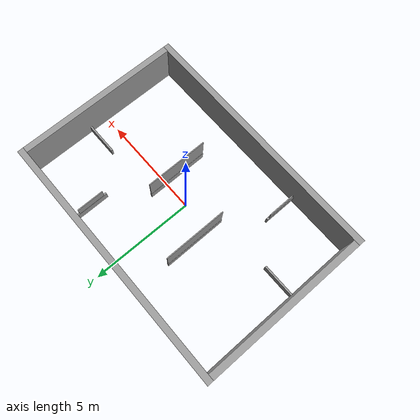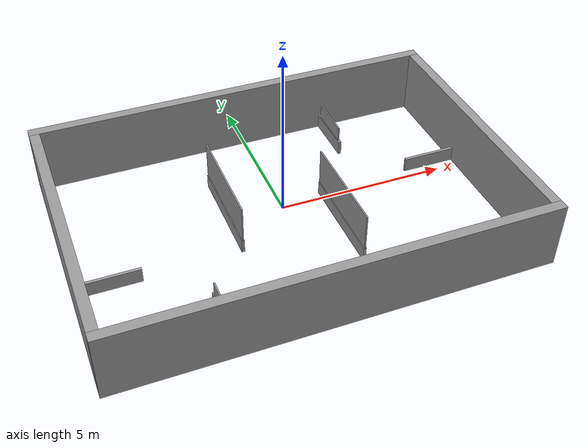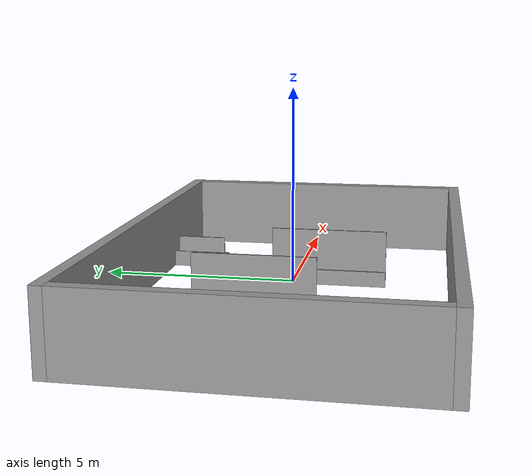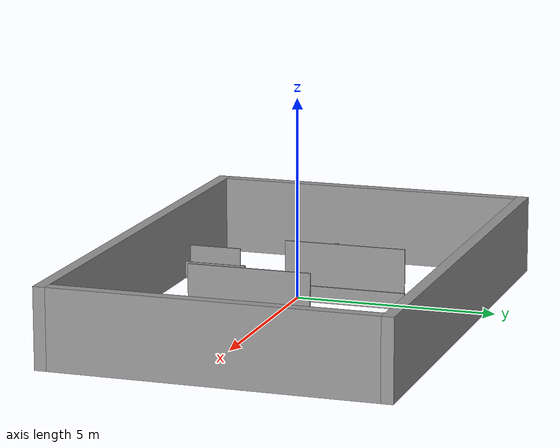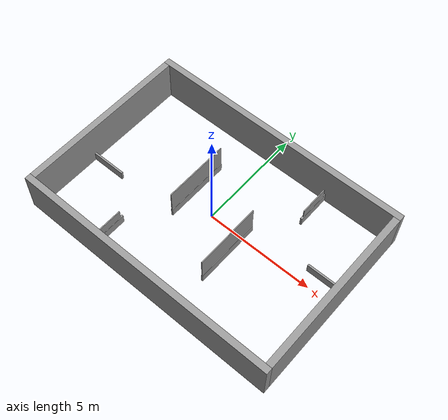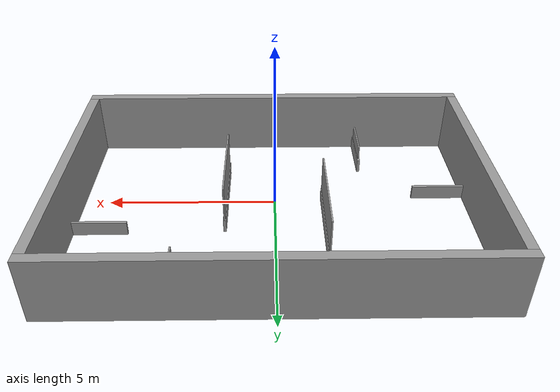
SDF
<?xml version='1.0'?>
<sdf version='1.7'>
  <model name='RM_Field_1'>
    <link name='link_2'>
      <inertial>
        <mass>1</mass>
        <inertia>
          <ixx>0.166667</ixx>
          <ixy>0</ixy>
          <ixz>0</ixz>
          <iyy>0.166667</iyy>
          <iyz>0</iyz>
          <izz>0.166667</izz>
        </inertia>
        <pose>0 0 0 0 -0 0</pose>
      </inertial>
      <pose>-0 -4.15 0.5 0 -0 0</pose>
      <gravity>1</gravity>
      <self_collide>0</self_collide>
      <kinematic>0</kinematic>
      <enable_wind>0</enable_wind>
      <visual name='visual'>
        <pose>0 0 0 0 -0 0</pose>
        <geometry>
          <box>
            <size>12.6 0.3 2</size>
          </box>
        </geometry>
        <material>
          <lighting>1</lighting>
          <script>
            <uri>file://media/materials/scripts/gazebo.material</uri>
            <name>Gazebo/Grey</name>
          </script>
          <shader type='pixel'>
            <normal_map>__default__</normal_map>
          </shader>
          <ambient>0.3 0.3 0.3 1</ambient>
          <diffuse>0.7 0.7 0.7 1</diffuse>
          <specular>0.01 0.01 0.01 1</specular>
          <emissive>0 0 0 1</emissive>
        </material>
        <transparency>0</transparency>
        <cast_shadows>1</cast_shadows>
      </visual>
      <collision name='collision'>
        <laser_retro>0</laser_retro>
        <max_contacts>10</max_contacts>
        <pose>0 0 0 0 -0 0</pose>
        <geometry>
          <box>
            <size>12.6 0.3 2</size>
          </box>
        </geometry>
        <surface>
          <friction>
            <ode>
              <mu>1</mu>
              <mu2>1</mu2>
              <fdir1>0 0 0</fdir1>
              <slip1>0</slip1>
              <slip2>0</slip2>
            </ode>
            <torsional>
              <coefficient>1</coefficient>
              <patch_radius>0</patch_radius>
              <surface_radius>0</surface_radius>
              <use_patch_radius>1</use_patch_radius>
              <ode>
                <slip>0</slip>
              </ode>
            </torsional>
          </friction>
          <bounce>
            <restitution_coefficient>0</restitution_coefficient>
            <threshold>1e+06</threshold>
          </bounce>
          <contact>
            <collide_without_contact>0</collide_without_contact>
            <collide_without_contact_bitmask>1</collide_without_contact_bitmask>
            <collide_bitmask>1</collide_bitmask>
            <ode>
              <soft_cfm>0</soft_cfm>
              <soft_erp>0.2</soft_erp>
              <kp>1e+13</kp>
              <kd>1</kd>
              <max_vel>0.01</max_vel>
              <min_depth>0</min_depth>
            </ode>
            <bullet>
              <split_impulse>1</split_impulse>
              <split_impulse_penetration_threshold>-0.01</split_impulse_penetration_threshold>
              <soft_cfm>0</soft_cfm>
              <soft_erp>0.2</soft_erp>
              <kp>1e+13</kp>
              <kd>1</kd>
            </bullet>
          </contact>
        </surface>
      </collision>
    </link>
    <link name='link_2_clone'>
      <inertial>
        <mass>1</mass>
        <inertia>
          <ixx>0.166667</ixx>
          <ixy>0</ixy>
          <ixz>0</ixz>
          <iyy>0.166667</iyy>
          <iyz>0</iyz>
          <izz>0.166667</izz>
        </inertia>
        <pose>0 0 0 0 -0 0</pose>
      </inertial>
      <pose>-0 4.15 0.5 0 -0 0</pose>
      <gravity>1</gravity>
      <self_collide>0</self_collide>
      <kinematic>0</kinematic>
      <enable_wind>0</enable_wind>
      <visual name='visual'>
        <pose>0 0 0 0 -0 0</pose>
        <geometry>
          <box>
            <size>12.6 0.3 2</size>
          </box>
        </geometry>
        <material>
          <lighting>1</lighting>
          <script>
            <uri>file://media/materials/scripts/gazebo.material</uri>
            <name>Gazebo/Grey</name>
          </script>
          <shader type='pixel'>
            <normal_map>__default__</normal_map>
          </shader>
          <ambient>0.3 0.3 0.3 1</ambient>
          <diffuse>0.7 0.7 0.7 1</diffuse>
          <specular>0.01 0.01 0.01 1</specular>
          <emissive>0 0 0 1</emissive>
        </material>
        <transparency>0</transparency>
        <cast_shadows>1</cast_shadows>
      </visual>
      <collision name='collision'>
        <laser_retro>0</laser_retro>
        <max_contacts>10</max_contacts>
        <pose>0 0 0 0 -0 0</pose>
        <geometry>
          <box>
            <size>12.6 0.3 2</size>
          </box>
        </geometry>
        <surface>
          <friction>
            <ode>
              <mu>1</mu>
              <mu2>1</mu2>
              <fdir1>0 0 0</fdir1>
              <slip1>0</slip1>
              <slip2>0</slip2>
            </ode>
            <torsional>
              <coefficient>1</coefficient>
              <patch_radius>0</patch_radius>
              <surface_radius>0</surface_radius>
              <use_patch_radius>1</use_patch_radius>
              <ode>
                <slip>0</slip>
              </ode>
            </torsional>
          </friction>
          <bounce>
            <restitution_coefficient>0</restitution_coefficient>
            <threshold>1e+06</threshold>
          </bounce>
          <contact>
            <collide_without_contact>0</collide_without_contact>
            <collide_without_contact_bitmask>1</collide_without_contact_bitmask>
            <collide_bitmask>1</collide_bitmask>
            <ode>
              <soft_cfm>0</soft_cfm>
              <soft_erp>0.2</soft_erp>
              <kp>1e+13</kp>
              <kd>1</kd>
              <max_vel>0.01</max_vel>
              <min_depth>0</min_depth>
            </ode>
            <bullet>
              <split_impulse>1</split_impulse>
              <split_impulse_penetration_threshold>-0.01</split_impulse_penetration_threshold>
              <soft_cfm>0</soft_cfm>
              <soft_erp>0.2</soft_erp>
              <kp>1e+13</kp>
              <kd>1</kd>
            </bullet>
          </contact>
        </surface>
      </collision>
    </link>
    <link name='link_3'>
      <inertial>
        <mass>1</mass>
        <inertia>
          <ixx>0.166667</ixx>
          <ixy>0</ixy>
          <ixz>0</ixz>
          <iyy>0.166667</iyy>
          <iyz>0</iyz>
          <izz>0.166667</izz>
        </inertia>
        <pose>0 0 0 0 -0 0</pose>
      </inertial>
      <pose>-6.15 0 0.5 0 -0 0</pose>
      <gravity>1</gravity>
      <self_collide>0</self_collide>
      <kinematic>0</kinematic>
      <enable_wind>0</enable_wind>
      <visual name='visual'>
        <pose>0 0 0 0 -0 0</pose>
        <geometry>
          <box>
            <size>0.3 8 2</size>
          </box>
        </geometry>
        <material>
          <lighting>1</lighting>
          <script>
            <uri>file://media/materials/scripts/gazebo.material</uri>
            <name>Gazebo/Grey</name>
          </script>
          <shader type='pixel'>
            <normal_map>__default__</normal_map>
          </shader>
          <ambient>0.3 0.3 0.3 1</ambient>
          <diffuse>0.7 0.7 0.7 1</diffuse>
          <specular>0.01 0.01 0.01 1</specular>
          <emissive>0 0 0 1</emissive>
        </material>
        <transparency>0</transparency>
        <cast_shadows>1</cast_shadows>
      </visual>
      <collision name='collision'>
        <laser_retro>0</laser_retro>
        <max_contacts>10</max_contacts>
        <pose>0 0 0 0 -0 0</pose>
        <geometry>
          <box>
            <size>0.3 8 2</size>
          </box>
        </geometry>
        <surface>
          <friction>
            <ode>
              <mu>1</mu>
              <mu2>1</mu2>
              <fdir1>0 0 0</fdir1>
              <slip1>0</slip1>
              <slip2>0</slip2>
            </ode>
            <torsional>
              <coefficient>1</coefficient>
              <patch_radius>0</patch_radius>
              <surface_radius>0</surface_radius>
              <use_patch_radius>1</use_patch_radius>
              <ode>
                <slip>0</slip>
              </ode>
            </torsional>
          </friction>
          <bounce>
            <restitution_coefficient>0</restitution_coefficient>
            <threshold>1e+06</threshold>
          </bounce>
          <contact>
            <collide_without_contact>0</collide_without_contact>
            <collide_without_contact_bitmask>1</collide_without_contact_bitmask>
            <collide_bitmask>1</collide_bitmask>
            <ode>
              <soft_cfm>0</soft_cfm>
              <soft_erp>0.2</soft_erp>
              <kp>1e+13</kp>
              <kd>1</kd>
              <max_vel>0.01</max_vel>
              <min_depth>0</min_depth>
            </ode>
            <bullet>
              <split_impulse>1</split_impulse>
              <split_impulse_penetration_threshold>-0.01</split_impulse_penetration_threshold>
              <soft_cfm>0</soft_cfm>
              <soft_erp>0.2</soft_erp>
              <kp>1e+13</kp>
              <kd>1</kd>
            </bullet>
          </contact>
        </surface>
      </collision>
    </link>
    <link name='link_3_clone'>
      <inertial>
        <mass>1</mass>
        <inertia>
          <ixx>0.166667</ixx>
          <ixy>0</ixy>
          <ixz>0</ixz>
          <iyy>0.166667</iyy>
          <iyz>0</iyz>
          <izz>0.166667</izz>
        </inertia>
        <pose>0 0 0 0 -0 0</pose>
      </inertial>
      <pose>6.15 0 0.5 0 -0 0</pose>
      <gravity>1</gravity>
      <self_collide>0</self_collide>
      <kinematic>0</kinematic>
      <enable_wind>0</enable_wind>
      <visual name='visual'>
        <pose>0 0 0 0 -0 0</pose>
        <geometry>
          <box>
            <size>0.3 8 2</size>
          </box>
        </geometry>
        <material>
          <lighting>1</lighting>
          <script>
            <uri>file://media/materials/scripts/gazebo.material</uri>
            <name>Gazebo/Grey</name>
          </script>
          <shader type='pixel'>
            <normal_map>__default__</normal_map>
          </shader>
          <ambient>0.3 0.3 0.3 1</ambient>
          <diffuse>0.7 0.7 0.7 1</diffuse>
          <specular>0.01 0.01 0.01 1</specular>
          <emissive>0 0 0 1</emissive>
        </material>
        <transparency>0</transparency>
        <cast_shadows>1</cast_shadows>
      </visual>
      <collision name='collision'>
        <laser_retro>0</laser_retro>
        <max_contacts>10</max_contacts>
        <pose>0 0 0 0 -0 0</pose>
        <geometry>
          <box>
            <size>0.3 8 2</size>
          </box>
        </geometry>
        <surface>
          <friction>
            <ode>
              <mu>1</mu>
              <mu2>1</mu2>
              <fdir1>0 0 0</fdir1>
              <slip1>0</slip1>
              <slip2>0</slip2>
            </ode>
            <torsional>
              <coefficient>1</coefficient>
              <patch_radius>0</patch_radius>
              <surface_radius>0</surface_radius>
              <use_patch_radius>1</use_patch_radius>
              <ode>
                <slip>0</slip>
              </ode>
            </torsional>
          </friction>
          <bounce>
            <restitution_coefficient>0</restitution_coefficient>
            <threshold>1e+06</threshold>
          </bounce>
          <contact>
            <collide_without_contact>0</collide_without_contact>
            <collide_without_contact_bitmask>1</collide_without_contact_bitmask>
            <collide_bitmask>1</collide_bitmask>
            <ode>
              <soft_cfm>0</soft_cfm>
              <soft_erp>0.2</soft_erp>
              <kp>1e+13</kp>
              <kd>1</kd>
              <max_vel>0.01</max_vel>
              <min_depth>0</min_depth>
            </ode>
            <bullet>
              <split_impulse>1</split_impulse>
              <split_impulse_penetration_threshold>-0.01</split_impulse_penetration_threshold>
              <soft_cfm>0</soft_cfm>
              <soft_erp>0.2</soft_erp>
              <kp>1e+13</kp>
              <kd>1</kd>
            </bullet>
          </contact>
        </surface>
      </collision>
    </link>
    <link name='link_4'>
      <inertial>
        <mass>1</mass>
        <inertia>
          <ixx>0.166667</ixx>
          <ixy>0</ixy>
          <ixz>0</ixz>
          <iyy>0.166667</iyy>
          <iyz>0</iyz>
          <izz>0.166667</izz>
        </inertia>
        <pose>0 0 0 0 -0 0</pose>
      </inertial>
      <pose>-5.1875 -0.857 -0.28 -1e-05 -0 0</pose>
      <gravity>1</gravity>
      <self_collide>0</self_collide>
      <kinematic>0</kinematic>
      <enable_wind>0</enable_wind>
      <visual name='visual'>
        <pose>0 0 0 0 -0 0</pose>
        <geometry>
          <box>
            <size>1.625 0.088 0.441</size>
          </box>
        </geometry>
        <material>
          <lighting>1</lighting>
          <script>
            <uri>file://media/materials/scripts/gazebo.material</uri>
            <name>Gazebo/Grey</name>
          </script>
          <shader type='pixel'>
            <normal_map>__default__</normal_map>
          </shader>
          <ambient>0.3 0.3 0.3 1</ambient>
          <diffuse>0.7 0.7 0.7 1</diffuse>
          <specular>0.01 0.01 0.01 1</specular>
          <emissive>0 0 0 1</emissive>
        </material>
        <transparency>0</transparency>
        <cast_shadows>1</cast_shadows>
      </visual>
      <collision name='collision'>
        <laser_retro>0</laser_retro>
        <max_contacts>10</max_contacts>
        <pose>0 0 0 0 -0 0</pose>
        <geometry>
          <box>
            <size>1.625 0.088 0.441</size>
          </box>
        </geometry>
        <surface>
          <friction>
            <ode>
              <mu>1</mu>
              <mu2>1</mu2>
              <fdir1>0 0 0</fdir1>
              <slip1>0</slip1>
              <slip2>0</slip2>
            </ode>
            <torsional>
              <coefficient>1</coefficient>
              <patch_radius>0</patch_radius>
              <surface_radius>0</surface_radius>
              <use_patch_radius>1</use_patch_radius>
              <ode>
                <slip>0</slip>
              </ode>
            </torsional>
          </friction>
          <bounce>
            <restitution_coefficient>0</restitution_coefficient>
            <threshold>1e+06</threshold>
          </bounce>
          <contact>
            <collide_without_contact>0</collide_without_contact>
            <collide_without_contact_bitmask>1</collide_without_contact_bitmask>
            <collide_bitmask>1</collide_bitmask>
            <ode>
              <soft_cfm>0</soft_cfm>
              <soft_erp>0.2</soft_erp>
              <kp>1e+13</kp>
              <kd>1</kd>
              <max_vel>0.01</max_vel>
              <min_depth>0</min_depth>
            </ode>
            <bullet>
              <split_impulse>1</split_impulse>
              <split_impulse_penetration_threshold>-0.01</split_impulse_penetration_threshold>
              <soft_cfm>0</soft_cfm>
              <soft_erp>0.2</soft_erp>
              <kp>1e+13</kp>
              <kd>1</kd>
            </bullet>
          </contact>
        </surface>
      </collision>
    </link>
    <link name='link_4_clone'>
      <inertial>
        <mass>1</mass>
        <inertia>
          <ixx>0.166667</ixx>
          <ixy>0</ixy>
          <ixz>0</ixz>
          <iyy>0.166667</iyy>
          <iyz>0</iyz>
          <izz>0.166667</izz>
        </inertia>
        <pose>0 0 0 0 -0 0</pose>
      </inertial>
      <pose>5.1875 0.857 -0.28 -2e-05 0 0</pose>
      <gravity>1</gravity>
      <self_collide>0</self_collide>
      <kinematic>0</kinematic>
      <enable_wind>0</enable_wind>
      <visual name='visual'>
        <pose>0 0 0 0 -0 0</pose>
        <geometry>
          <box>
            <size>1.625 0.088 0.441</size>
          </box>
        </geometry>
        <material>
          <lighting>1</lighting>
          <script>
            <uri>file://media/materials/scripts/gazebo.material</uri>
            <name>Gazebo/Grey</name>
          </script>
          <shader type='pixel'>
            <normal_map>__default__</normal_map>
          </shader>
          <ambient>0.3 0.3 0.3 1</ambient>
          <diffuse>0.7 0.7 0.7 1</diffuse>
          <specular>0.01 0.01 0.01 1</specular>
          <emissive>0 0 0 1</emissive>
        </material>
        <transparency>0</transparency>
        <cast_shadows>1</cast_shadows>
      </visual>
      <collision name='collision'>
        <laser_retro>0</laser_retro>
        <max_contacts>10</max_contacts>
        <pose>0 0 0 0 -0 0</pose>
        <geometry>
          <box>
            <size>1.625 0.088 0.441</size>
          </box>
        </geometry>
        <surface>
          <friction>
            <ode>
              <mu>1</mu>
              <mu2>1</mu2>
              <fdir1>0 0 0</fdir1>
              <slip1>0</slip1>
              <slip2>0</slip2>
            </ode>
            <torsional>
              <coefficient>1</coefficient>
              <patch_radius>0</patch_radius>
              <surface_radius>0</surface_radius>
              <use_patch_radius>1</use_patch_radius>
              <ode>
                <slip>0</slip>
              </ode>
            </torsional>
          </friction>
          <bounce>
            <restitution_coefficient>0</restitution_coefficient>
            <threshold>1e+06</threshold>
          </bounce>
          <contact>
            <collide_without_contact>0</collide_without_contact>
            <collide_without_contact_bitmask>1</collide_without_contact_bitmask>
            <collide_bitmask>1</collide_bitmask>
            <ode>
              <soft_cfm>0</soft_cfm>
              <soft_erp>0.2</soft_erp>
              <kp>1e+13</kp>
              <kd>1</kd>
              <max_vel>0.01</max_vel>
              <min_depth>0</min_depth>
            </ode>
            <bullet>
              <split_impulse>1</split_impulse>
              <split_impulse_penetration_threshold>-0.01</split_impulse_penetration_threshold>
              <soft_cfm>0</soft_cfm>
              <soft_erp>0.2</soft_erp>
              <kp>1e+13</kp>
              <kd>1</kd>
            </bullet>
          </contact>
        </surface>
      </collision>
    </link>
    <link name='link_4_clone_0'>
      <inertial>
        <mass>1</mass>
        <inertia>
          <ixx>0.166667</ixx>
          <ixy>0</ixy>
          <ixz>0</ixz>
          <iyy>0.166667</iyy>
          <iyz>0</iyz>
          <izz>0.166667</izz>
        </inertia>
        <pose>0 0 0 0 -0 0</pose>
      </inertial>
      <pose>-2.857 -3.1875 -0.28 0 -0 0</pose>
      <gravity>1</gravity>
      <self_collide>0</self_collide>
      <kinematic>0</kinematic>
      <enable_wind>0</enable_wind>
      <visual name='visual'>
        <pose>0 0 0 0 -0 0</pose>
        <geometry>
          <box>
            <size>0.088 1.625 0.441</size>
          </box>
        </geometry>
        <material>
          <lighting>1</lighting>
          <script>
            <uri>file://media/materials/scripts/gazebo.material</uri>
            <name>Gazebo/Grey</name>
          </script>
          <shader type='pixel'>
            <normal_map>__default__</normal_map>
          </shader>
          <ambient>0.3 0.3 0.3 1</ambient>
          <diffuse>0.7 0.7 0.7 1</diffuse>
          <specular>0.01 0.01 0.01 1</specular>
          <emissive>0 0 0 1</emissive>
        </material>
        <transparency>0</transparency>
        <cast_shadows>1</cast_shadows>
      </visual>
      <collision name='collision'>
        <laser_retro>0</laser_retro>
        <max_contacts>10</max_contacts>
        <pose>0 0 0 0 -0 0</pose>
        <geometry>
          <box>
            <size>0.088 1.625 0.441</size>
          </box>
        </geometry>
        <surface>
          <friction>
            <ode>
              <mu>1</mu>
              <mu2>1</mu2>
              <fdir1>0 0 0</fdir1>
              <slip1>0</slip1>
              <slip2>0</slip2>
            </ode>
            <torsional>
              <coefficient>1</coefficient>
              <patch_radius>0</patch_radius>
              <surface_radius>0</surface_radius>
              <use_patch_radius>1</use_patch_radius>
              <ode>
                <slip>0</slip>
              </ode>
            </torsional>
          </friction>
          <bounce>
            <restitution_coefficient>0</restitution_coefficient>
            <threshold>1e+06</threshold>
          </bounce>
          <contact>
            <collide_without_contact>0</collide_without_contact>
            <collide_without_contact_bitmask>1</collide_without_contact_bitmask>
            <collide_bitmask>1</collide_bitmask>
            <ode>
              <soft_cfm>0</soft_cfm>
              <soft_erp>0.2</soft_erp>
              <kp>1e+13</kp>
              <kd>1</kd>
              <max_vel>0.01</max_vel>
              <min_depth>0</min_depth>
            </ode>
            <bullet>
              <split_impulse>1</split_impulse>
              <split_impulse_penetration_threshold>-0.01</split_impulse_penetration_threshold>
              <soft_cfm>0</soft_cfm>
              <soft_erp>0.2</soft_erp>
              <kp>1e+13</kp>
              <kd>1</kd>
            </bullet>
          </contact>
        </surface>
      </collision>
    </link>
    <link name='link_4_clone_0_clone'>
      <inertial>
        <mass>1</mass>
        <inertia>
          <ixx>0.166667</ixx>
          <ixy>0</ixy>
          <ixz>0</ixz>
          <iyy>0.166667</iyy>
          <iyz>0</iyz>
          <izz>0.166667</izz>
        </inertia>
        <pose>0 0 0 0 -0 0</pose>
      </inertial>
      <pose>2.857 3.1875 -0.28 -3e-05 0 0</pose>
      <gravity>1</gravity>
      <self_collide>0</self_collide>
      <kinematic>0</kinematic>
      <enable_wind>0</enable_wind>
      <visual name='visual'>
        <pose>0 0 0 0 -0 0</pose>
        <geometry>
          <box>
            <size>0.088 1.625 0.441</size>
          </box>
        </geometry>
        <material>
          <lighting>1</lighting>
          <script>
            <uri>file://media/materials/scripts/gazebo.material</uri>
            <name>Gazebo/Grey</name>
          </script>
          <shader type='pixel'>
            <normal_map>__default__</normal_map>
          </shader>
          <ambient>0.3 0.3 0.3 1</ambient>
          <diffuse>0.7 0.7 0.7 1</diffuse>
          <specular>0.01 0.01 0.01 1</specular>
          <emissive>0 0 0 1</emissive>
        </material>
        <transparency>0</transparency>
        <cast_shadows>1</cast_shadows>
      </visual>
      <collision name='collision'>
        <laser_retro>0</laser_retro>
        <max_contacts>10</max_contacts>
        <pose>0 0 0 0 -0 0</pose>
        <geometry>
          <box>
            <size>0.088 1.625 0.441</size>
          </box>
        </geometry>
        <surface>
          <friction>
            <ode>
              <mu>1</mu>
              <mu2>1</mu2>
              <fdir1>0 0 0</fdir1>
              <slip1>0</slip1>
              <slip2>0</slip2>
            </ode>
            <torsional>
              <coefficient>1</coefficient>
              <patch_radius>0</patch_radius>
              <surface_radius>0</surface_radius>
              <use_patch_radius>1</use_patch_radius>
              <ode>
                <slip>0</slip>
              </ode>
            </torsional>
          </friction>
          <bounce>
            <restitution_coefficient>0</restitution_coefficient>
            <threshold>1e+06</threshold>
          </bounce>
          <contact>
            <collide_without_contact>0</collide_without_contact>
            <collide_without_contact_bitmask>1</collide_without_contact_bitmask>
            <collide_bitmask>1</collide_bitmask>
            <ode>
              <soft_cfm>0</soft_cfm>
              <soft_erp>0.2</soft_erp>
              <kp>1e+13</kp>
              <kd>1</kd>
              <max_vel>0.01</max_vel>
              <min_depth>0</min_depth>
            </ode>
            <bullet>
              <split_impulse>1</split_impulse>
              <split_impulse_penetration_threshold>-0.01</split_impulse_penetration_threshold>
              <soft_cfm>0</soft_cfm>
              <soft_erp>0.2</soft_erp>
              <kp>1e+13</kp>
              <kd>1</kd>
            </bullet>
          </contact>
        </surface>
      </collision>
    </link>
    <link name='link_4_clone_0_clone_0'>
      <inertial>
        <mass>1</mass>
        <inertia>
          <ixx>0.166667</ixx>
          <ixy>0</ixy>
          <ixz>0</ixz>
          <iyy>0.166667</iyy>
          <iyz>0</iyz>
          <izz>0.166667</izz>
        </inertia>
        <pose>0 0 0 0 -0 0</pose>
      </inertial>
      <pose>-2.857 -3.187 0.161 0 -0 0</pose>
      <gravity>1</gravity>
      <self_collide>0</self_collide>
      <kinematic>0</kinematic>
      <enable_wind>0</enable_wind>
      <visual name='visual'>
        <pose>0 0 0 0 -0 0</pose>
        <geometry>
          <box>
            <size>0.044 1.376 0.455</size>
          </box>
        </geometry>
        <material>
          <lighting>1</lighting>
          <script>
            <uri>file://media/materials/scripts/gazebo.material</uri>
            <name>Gazebo/Grey</name>
          </script>
          <shader type='pixel'>
            <normal_map>__default__</normal_map>
          </shader>
          <ambient>0.3 0.3 0.3 1</ambient>
          <diffuse>0.7 0.7 0.7 1</diffuse>
          <specular>0.01 0.01 0.01 1</specular>
          <emissive>0 0 0 1</emissive>
        </material>
        <transparency>0</transparency>
        <cast_shadows>1</cast_shadows>
      </visual>
      <collision name='collision'>
        <laser_retro>0</laser_retro>
        <max_contacts>10</max_contacts>
        <pose>0 0 0 0 -0 0</pose>
        <geometry>
          <box>
            <size>0.044 1.376 0.455</size>
          </box>
        </geometry>
        <surface>
          <friction>
            <ode>
              <mu>1</mu>
              <mu2>1</mu2>
              <fdir1>0 0 0</fdir1>
              <slip1>0</slip1>
              <slip2>0</slip2>
            </ode>
            <torsional>
              <coefficient>1</coefficient>
              <patch_radius>0</patch_radius>
              <surface_radius>0</surface_radius>
              <use_patch_radius>1</use_patch_radius>
              <ode>
                <slip>0</slip>
              </ode>
            </torsional>
          </friction>
          <bounce>
            <restitution_coefficient>0</restitution_coefficient>
            <threshold>1e+06</threshold>
          </bounce>
          <contact>
            <collide_without_contact>0</collide_without_contact>
            <collide_without_contact_bitmask>1</collide_without_contact_bitmask>
            <collide_bitmask>1</collide_bitmask>
            <ode>
              <soft_cfm>0</soft_cfm>
              <soft_erp>0.2</soft_erp>
              <kp>1e+13</kp>
              <kd>1</kd>
              <max_vel>0.01</max_vel>
              <min_depth>0</min_depth>
            </ode>
            <bullet>
              <split_impulse>1</split_impulse>
              <split_impulse_penetration_threshold>-0.01</split_impulse_penetration_threshold>
              <soft_cfm>0</soft_cfm>
              <soft_erp>0.2</soft_erp>
              <kp>1e+13</kp>
              <kd>1</kd>
            </bullet>
          </contact>
        </surface>
      </collision>
    </link>
    <link name='link_4_clone_0_clone_0_clone'>
      <inertial>
        <mass>1</mass>
        <inertia>
          <ixx>0.166667</ixx>
          <ixy>0</ixy>
          <ixz>0</ixz>
          <iyy>0.166667</iyy>
          <iyz>0</iyz>
          <izz>0.166667</izz>
        </inertia>
        <pose>0 0 0 0 -0 0</pose>
      </inertial>
      <pose>2.857 3.187 0.161 -1e-05 -0 0</pose>
      <gravity>1</gravity>
      <self_collide>0</self_collide>
      <kinematic>0</kinematic>
      <enable_wind>0</enable_wind>
      <visual name='visual'>
        <pose>0 0 0 0 -0 0</pose>
        <geometry>
          <box>
            <size>0.044 1.376 0.455</size>
          </box>
        </geometry>
        <material>
          <lighting>1</lighting>
          <script>
            <uri>file://media/materials/scripts/gazebo.material</uri>
            <name>Gazebo/Grey</name>
          </script>
          <shader type='pixel'>
            <normal_map>__default__</normal_map>
          </shader>
          <ambient>0.3 0.3 0.3 1</ambient>
          <diffuse>0.7 0.7 0.7 1</diffuse>
          <specular>0.01 0.01 0.01 1</specular>
          <emissive>0 0 0 1</emissive>
        </material>
        <transparency>0</transparency>
        <cast_shadows>1</cast_shadows>
      </visual>
      <collision name='collision'>
        <laser_retro>0</laser_retro>
        <max_contacts>10</max_contacts>
        <pose>0 0 0 0 -0 0</pose>
        <geometry>
          <box>
            <size>0.044 1.376 0.455</size>
          </box>
        </geometry>
        <surface>
          <friction>
            <ode>
              <mu>1</mu>
              <mu2>1</mu2>
              <fdir1>0 0 0</fdir1>
              <slip1>0</slip1>
              <slip2>0</slip2>
            </ode>
            <torsional>
              <coefficient>1</coefficient>
              <patch_radius>0</patch_radius>
              <surface_radius>0</surface_radius>
              <use_patch_radius>1</use_patch_radius>
              <ode>
                <slip>0</slip>
              </ode>
            </torsional>
          </friction>
          <bounce>
            <restitution_coefficient>0</restitution_coefficient>
            <threshold>1e+06</threshold>
          </bounce>
          <contact>
            <collide_without_contact>0</collide_without_contact>
            <collide_without_contact_bitmask>1</collide_without_contact_bitmask>
            <collide_bitmask>1</collide_bitmask>
            <ode>
              <soft_cfm>0</soft_cfm>
              <soft_erp>0.2</soft_erp>
              <kp>1e+13</kp>
              <kd>1</kd>
              <max_vel>0.01</max_vel>
              <min_depth>0</min_depth>
            </ode>
            <bullet>
              <split_impulse>1</split_impulse>
              <split_impulse_penetration_threshold>-0.01</split_impulse_penetration_threshold>
              <soft_cfm>0</soft_cfm>
              <soft_erp>0.2</soft_erp>
              <kp>1e+13</kp>
              <kd>1</kd>
            </bullet>
          </contact>
        </surface>
      </collision>
    </link>
    <link name='link_6'>
      <inertial>
        <mass>1</mass>
        <inertia>
          <ixx>0.166667</ixx>
          <ixy>0</ixy>
          <ixz>0</ixz>
          <iyy>0.166667</iyy>
          <iyz>0</iyz>
          <izz>0.166667</izz>
        </inertia>
        <pose>0 0 0 0 -0 0</pose>
      </inertial>
      <pose>-1.5 0.75 -0.28 -1e-05 -0 0</pose>
      <gravity>1</gravity>
      <self_collide>0</self_collide>
      <kinematic>0</kinematic>
      <enable_wind>0</enable_wind>
      <visual name='visual'>
        <pose>0 0 0 0 -0 0</pose>
        <geometry>
          <box>
            <size>0.088 3.125 0.42</size>
          </box>
        </geometry>
        <material>
          <lighting>1</lighting>
          <script>
            <uri>file://media/materials/scripts/gazebo.material</uri>
            <name>Gazebo/Grey</name>
          </script>
          <shader type='pixel'>
            <normal_map>__default__</normal_map>
          </shader>
          <ambient>0.3 0.3 0.3 1</ambient>
          <diffuse>0.7 0.7 0.7 1</diffuse>
          <specular>0.01 0.01 0.01 1</specular>
          <emissive>0 0 0 1</emissive>
        </material>
        <transparency>0</transparency>
        <cast_shadows>1</cast_shadows>
      </visual>
      <collision name='collision'>
        <laser_retro>0</laser_retro>
        <max_contacts>10</max_contacts>
        <pose>0 0 0 0 -0 0</pose>
        <geometry>
          <box>
            <size>0.088 3.125 0.42</size>
          </box>
        </geometry>
        <surface>
          <friction>
            <ode>
              <mu>1</mu>
              <mu2>1</mu2>
              <fdir1>0 0 0</fdir1>
              <slip1>0</slip1>
              <slip2>0</slip2>
            </ode>
            <torsional>
              <coefficient>1</coefficient>
              <patch_radius>0</patch_radius>
              <surface_radius>0</surface_radius>
              <use_patch_radius>1</use_patch_radius>
              <ode>
                <slip>0</slip>
              </ode>
            </torsional>
          </friction>
          <bounce>
            <restitution_coefficient>0</restitution_coefficient>
            <threshold>1e+06</threshold>
          </bounce>
          <contact>
            <collide_without_contact>0</collide_without_contact>
            <collide_without_contact_bitmask>1</collide_without_contact_bitmask>
            <collide_bitmask>1</collide_bitmask>
            <ode>
              <soft_cfm>0</soft_cfm>
              <soft_erp>0.2</soft_erp>
              <kp>1e+13</kp>
              <kd>1</kd>
              <max_vel>0.01</max_vel>
              <min_depth>0</min_depth>
            </ode>
            <bullet>
              <split_impulse>1</split_impulse>
              <split_impulse_penetration_threshold>-0.01</split_impulse_penetration_threshold>
              <soft_cfm>0</soft_cfm>
              <soft_erp>0.2</soft_erp>
              <kp>1e+13</kp>
              <kd>1</kd>
            </bullet>
          </contact>
        </surface>
      </collision>
    </link>
    <link name='link_6_clone'>
      <inertial>
        <mass>1</mass>
        <inertia>
          <ixx>0.166667</ixx>
          <ixy>0</ixy>
          <ixz>0</ixz>
          <iyy>0.166667</iyy>
          <iyz>0</iyz>
          <izz>0.166667</izz>
        </inertia>
        <pose>0 0 0 0 -0 0</pose>
      </inertial>
      <pose>1.5 -0.75 -0.28 -2e-05 0 0</pose>
      <gravity>1</gravity>
      <self_collide>0</self_collide>
      <kinematic>0</kinematic>
      <enable_wind>0</enable_wind>
      <visual name='visual'>
        <pose>0 0 0 0 -0 0</pose>
        <geometry>
          <box>
            <size>0.088 3.125 0.42</size>
          </box>
        </geometry>
        <material>
          <lighting>1</lighting>
          <script>
            <uri>file://media/materials/scripts/gazebo.material</uri>
            <name>Gazebo/Grey</name>
          </script>
          <shader type='pixel'>
            <normal_map>__default__</normal_map>
          </shader>
          <ambient>0.3 0.3 0.3 1</ambient>
          <diffuse>0.7 0.7 0.7 1</diffuse>
          <specular>0.01 0.01 0.01 1</specular>
          <emissive>0 0 0 1</emissive>
        </material>
        <transparency>0</transparency>
        <cast_shadows>1</cast_shadows>
      </visual>
      <collision name='collision'>
        <laser_retro>0</laser_retro>
        <max_contacts>10</max_contacts>
        <pose>0 0 0 0 -0 0</pose>
        <geometry>
          <box>
            <size>0.088 3.125 0.42</size>
          </box>
        </geometry>
        <surface>
          <friction>
            <ode>
              <mu>1</mu>
              <mu2>1</mu2>
              <fdir1>0 0 0</fdir1>
              <slip1>0</slip1>
              <slip2>0</slip2>
            </ode>
            <torsional>
              <coefficient>1</coefficient>
              <patch_radius>0</patch_radius>
              <surface_radius>0</surface_radius>
              <use_patch_radius>1</use_patch_radius>
              <ode>
                <slip>0</slip>
              </ode>
            </torsional>
          </friction>
          <bounce>
            <restitution_coefficient>0</restitution_coefficient>
            <threshold>1e+06</threshold>
          </bounce>
          <contact>
            <collide_without_contact>0</collide_without_contact>
            <collide_without_contact_bitmask>1</collide_without_contact_bitmask>
            <collide_bitmask>1</collide_bitmask>
            <ode>
              <soft_cfm>0</soft_cfm>
              <soft_erp>0.2</soft_erp>
              <kp>1e+13</kp>
              <kd>1</kd>
              <max_vel>0.01</max_vel>
              <min_depth>0</min_depth>
            </ode>
            <bullet>
              <split_impulse>1</split_impulse>
              <split_impulse_penetration_threshold>-0.01</split_impulse_penetration_threshold>
              <soft_cfm>0</soft_cfm>
              <soft_erp>0.2</soft_erp>
              <kp>1e+13</kp>
              <kd>1</kd>
            </bullet>
          </contact>
        </surface>
      </collision>
    </link>
    <link name='link_6_clone_0'>
      <inertial>
        <mass>1</mass>
        <inertia>
          <ixx>0.166667</ixx>
          <ixy>0</ixy>
          <ixz>0</ixz>
          <iyy>0.166667</iyy>
          <iyz>0</iyz>
          <izz>0.166667</izz>
        </inertia>
        <pose>0 0 0 0 -0 0</pose>
      </inertial>
      <pose>-1.5 0.75 0.495 -2e-05 0 0</pose>
      <gravity>1</gravity>
      <self_collide>0</self_collide>
      <kinematic>0</kinematic>
      <enable_wind>0</enable_wind>
      <visual name='visual'>
        <pose>0 0 0 0 -0 0</pose>
        <geometry>
          <box>
            <size>0.044 3.125 1.113</size>
          </box>
        </geometry>
        <material>
          <lighting>1</lighting>
          <script>
            <uri>file://media/materials/scripts/gazebo.material</uri>
            <name>Gazebo/Grey</name>
          </script>
          <shader type='pixel'>
            <normal_map>__default__</normal_map>
          </shader>
          <ambient>0.3 0.3 0.3 1</ambient>
          <diffuse>0.7 0.7 0.7 1</diffuse>
          <specular>0.01 0.01 0.01 1</specular>
          <emissive>0 0 0 1</emissive>
        </material>
        <transparency>0</transparency>
        <cast_shadows>1</cast_shadows>
      </visual>
      <collision name='collision'>
        <laser_retro>0</laser_retro>
        <max_contacts>10</max_contacts>
        <pose>0 0 0 0 -0 0</pose>
        <geometry>
          <box>
            <size>0.044 3.125 1.113</size>
          </box>
        </geometry>
        <surface>
          <friction>
            <ode>
              <mu>1</mu>
              <mu2>1</mu2>
              <fdir1>0 0 0</fdir1>
              <slip1>0</slip1>
              <slip2>0</slip2>
            </ode>
            <torsional>
              <coefficient>1</coefficient>
              <patch_radius>0</patch_radius>
              <surface_radius>0</surface_radius>
              <use_patch_radius>1</use_patch_radius>
              <ode>
                <slip>0</slip>
              </ode>
            </torsional>
          </friction>
          <bounce>
            <restitution_coefficient>0</restitution_coefficient>
            <threshold>1e+06</threshold>
          </bounce>
          <contact>
            <collide_without_contact>0</collide_without_contact>
            <collide_without_contact_bitmask>1</collide_without_contact_bitmask>
            <collide_bitmask>1</collide_bitmask>
            <ode>
              <soft_cfm>0</soft_cfm>
              <soft_erp>0.2</soft_erp>
              <kp>1e+13</kp>
              <kd>1</kd>
              <max_vel>0.01</max_vel>
              <min_depth>0</min_depth>
            </ode>
            <bullet>
              <split_impulse>1</split_impulse>
              <split_impulse_penetration_threshold>-0.01</split_impulse_penetration_threshold>
              <soft_cfm>0</soft_cfm>
              <soft_erp>0.2</soft_erp>
              <kp>1e+13</kp>
              <kd>1</kd>
            </bullet>
          </contact>
        </surface>
      </collision>
    </link>
    <link name='link_6_clone_0_clone'>
      <inertial>
        <mass>1</mass>
        <inertia>
          <ixx>0.166667</ixx>
          <ixy>0</ixy>
          <ixz>0</ixz>
          <iyy>0.166667</iyy>
          <iyz>0</iyz>
          <izz>0.166667</izz>
        </inertia>
        <pose>0 0 0 0 -0 0</pose>
      </inertial>
      <pose>1.5 -0.75 0.495 -3e-05 0 0</pose>
      <gravity>1</gravity>
      <self_collide>0</self_collide>
      <kinematic>0</kinematic>
      <enable_wind>0</enable_wind>
      <visual name='visual'>
        <pose>0 0 0 0 -0 0</pose>
        <geometry>
          <box>
            <size>0.044 3.125 1.113</size>
          </box>
        </geometry>
        <material>
          <lighting>1</lighting>
          <script>
            <uri>file://media/materials/scripts/gazebo.material</uri>
            <name>Gazebo/Grey</name>
          </script>
          <shader type='pixel'>
            <normal_map>__default__</normal_map>
          </shader>
          <ambient>0.3 0.3 0.3 1</ambient>
          <diffuse>0.7 0.7 0.7 1</diffuse>
          <specular>0.01 0.01 0.01 1</specular>
          <emissive>0 0 0 1</emissive>
        </material>
        <transparency>0</transparency>
        <cast_shadows>1</cast_shadows>
      </visual>
      <collision name='collision'>
        <laser_retro>0</laser_retro>
        <max_contacts>10</max_contacts>
        <pose>0 0 0 0 -0 0</pose>
        <geometry>
          <box>
            <size>0.044 3.125 1.113</size>
          </box>
        </geometry>
        <surface>
          <friction>
            <ode>
              <mu>1</mu>
              <mu2>1</mu2>
              <fdir1>0 0 0</fdir1>
              <slip1>0</slip1>
              <slip2>0</slip2>
            </ode>
            <torsional>
              <coefficient>1</coefficient>
              <patch_radius>0</patch_radius>
              <surface_radius>0</surface_radius>
              <use_patch_radius>1</use_patch_radius>
              <ode>
                <slip>0</slip>
              </ode>
            </torsional>
          </friction>
          <bounce>
            <restitution_coefficient>0</restitution_coefficient>
            <threshold>1e+06</threshold>
          </bounce>
          <contact>
            <collide_without_contact>0</collide_without_contact>
            <collide_without_contact_bitmask>1</collide_without_contact_bitmask>
            <collide_bitmask>1</collide_bitmask>
            <ode>
              <soft_cfm>0</soft_cfm>
              <soft_erp>0.2</soft_erp>
              <kp>1e+13</kp>
              <kd>1</kd>
              <max_vel>0.01</max_vel>
              <min_depth>0</min_depth>
            </ode>
            <bullet>
              <split_impulse>1</split_impulse>
              <split_impulse_penetration_threshold>-0.01</split_impulse_penetration_threshold>
              <soft_cfm>0</soft_cfm>
              <soft_erp>0.2</soft_erp>
              <kp>1e+13</kp>
              <kd>1</kd>
            </bullet>
          </contact>
        </surface>
      </collision>
    </link>
    <static>1</static>
    <allow_auto_disable>1</allow_auto_disable>
  </model>
</sdf>
